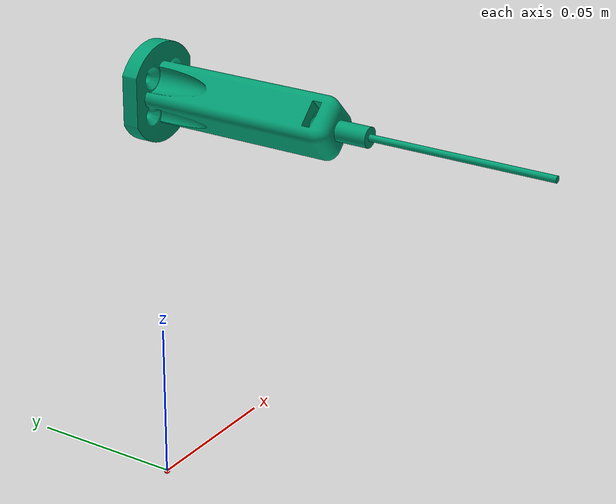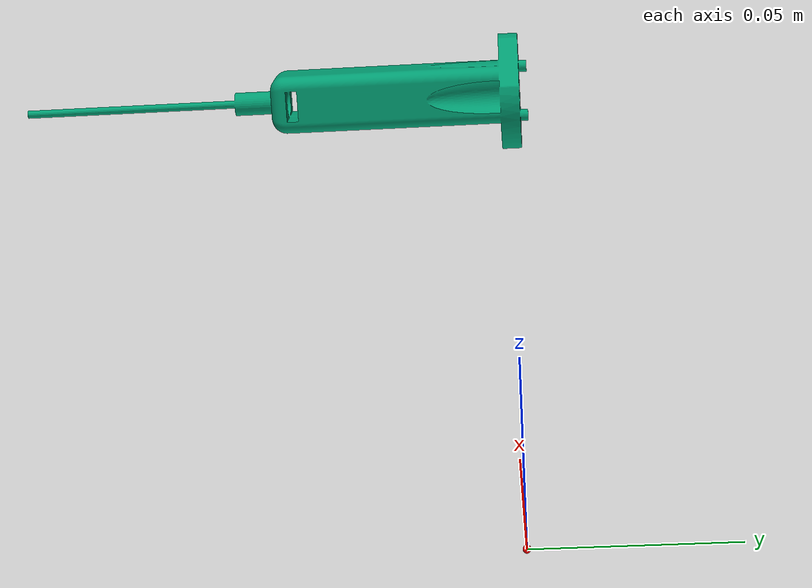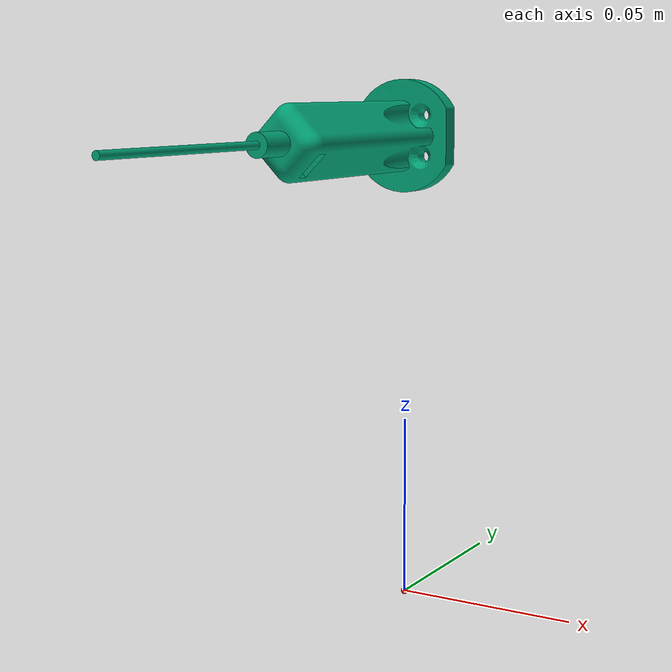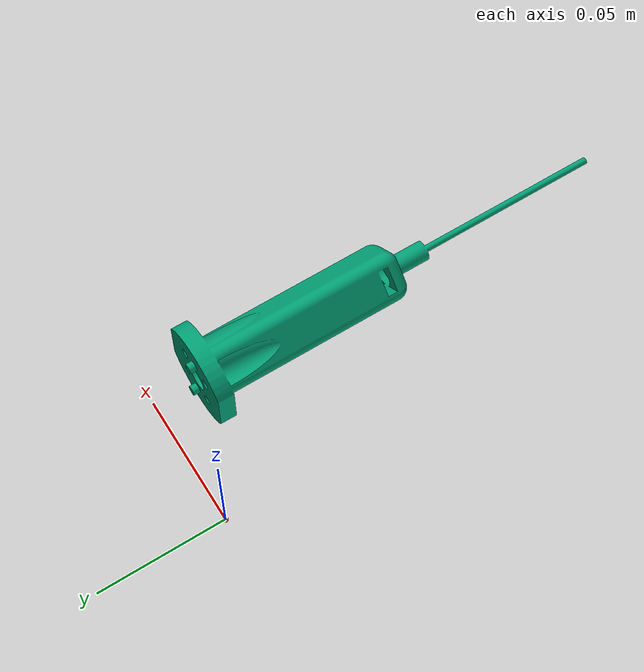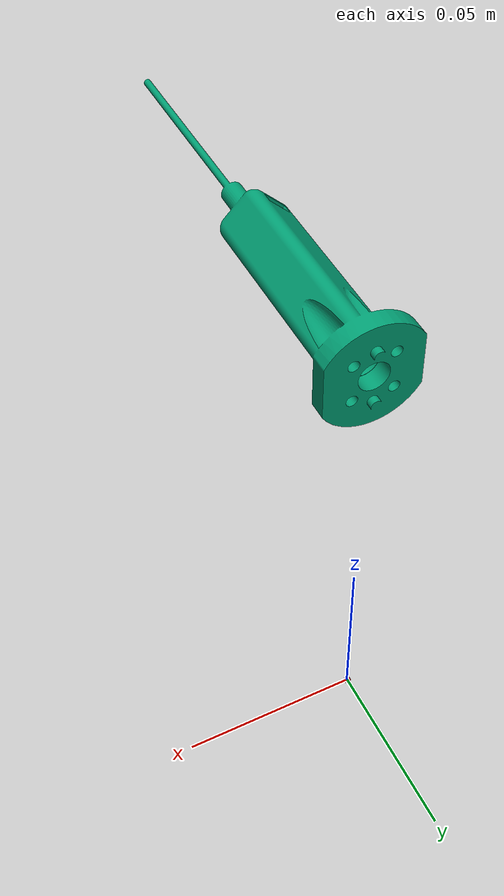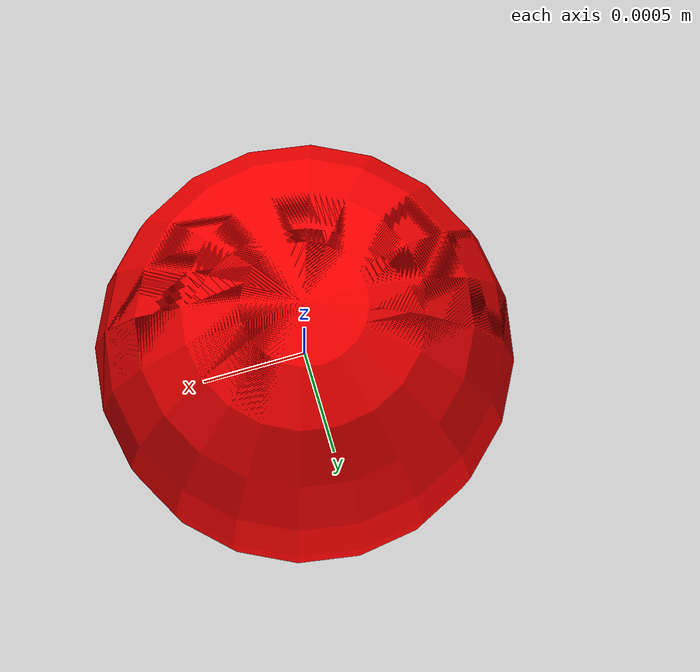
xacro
<?xml version="1.0"?>
<robot name="meca500_tool_needle" xmlns:xacro="http://www.ros.org/wiki/xacro">

    <link name="dummy_needle_base">
    </link>

    <link name="dummy_needle_ball_link">
        <collision>
            <origin xyz="0 0 0" rpy="0 0 0"/>
            <geometry>
            <sphere radius="0.002"/>
            </geometry>
        </collision>
        <visual>
            <origin xyz="0 0 0" rpy="0 0 0"/>
            <geometry>
                <sphere radius="0.001"/>
            </geometry>
            <material name="red">
            <color rgba="1.0 0.0 0.0 1.0"/>
            </material>
        </visual>
    </link>

    <link name="dummy_needle_cylinder_link">
        <collision>
            <origin xyz="0 0 0" rpy="0 ${pi / 2} ${-pi / 2}"/>
            <geometry>
            <mesh filename="package://mecademic_description/meshes/dummy_needle_tool.stl" />
            </geometry>
        </collision>
        <visual>
            <origin xyz="0 0 0" rpy="0 ${pi / 2} ${-pi / 2}"/>
            <geometry>
            <mesh filename="package://mecademic_description/meshes/dummy_needle_tool.dae" />
            </geometry>
        </visual>
    </link>

<joint name="dummy_needle_yaw_joint" type="revolute">
        <parent link="dummy_needle_base"/>
        <child link="dummy_needle_yaw_link"/>
        <axis xyz="1 0 0 "/>
        <origin xyz ="0 0 0" rpy="0 0 0"/>
        <limit lower="-${pi / 2}" upper="${pi / 2}" effort="1000" velocity="50.0"/>
    </joint>

    <link name="dummy_needle_yaw_link">
    </link>

    <joint name="dummy_needle_pitch_joint" type="revolute">
        <parent link="dummy_needle_yaw_link"/>
        <child link="dummy_needle_pitch_link"/>
        <axis xyz="0 1 0"/>
        <limit lower="-${pi / 2}" upper="${pi / 2}" effort="1000" velocity="50.0"/>
    </joint>

    <link name="dummy_needle_pitch_link">
    </link>

    <joint name="dummy_needle_roll_joint" type="revolute">
        <parent link="dummy_needle_pitch_link"/>
        <child link="dummy_needle_roll_link"/>
        <axis xyz="0 0 1"/>
        <limit lower="-${pi / 2}" upper="${pi / 2}" effort="1000" velocity="50.0"/>
    </joint>

    <link name="dummy_needle_roll_link">
    </link>

    <joint name="dummy_needle_ball_joint" type="fixed">
        <parent link="dummy_needle_roll_link"/>
        <child link="dummy_needle_ball_link"/>
        <origin xyz="0 0 0" rpy="0 0 0"/>
    </joint>

    <joint name="dummy_needle_insert_joint" type="prismatic">
        <parent link="dummy_needle_ball_link"/>
        <child link="dummy_needle_cylinder_link"/>
        <origin xyz="0 0 .1284" rpy="0 ${pi / 2} ${pi / 2}"/>
        <limit lower="0.0" upper="0.1284" effort="1000" velocity="50.0"/>
    </joint>

    <link name="dummy_needle_tip_link">
        <collision>
            <origin xyz="0 0 0" rpy="0 0 0"/>
            <geometry>
                <sphere radius=".001"/>
            </geometry>
        </collision>
        <visual>
            <origin xyz="0 0 0" rpy="0 0 0"/>
            <geometry>
                <sphere radius=".001"/>
            </geometry>
            <material name="red">
            <color rgba="1.0 0.0 0.0 1.0"/>
            </material>
        </visual>
    </link>

    <joint name="dummy_needle_tip_joint" type="fixed">
        <parent link="dummy_needle_cylinder_link"/>
        <child link="dummy_needle_tip_link"/>
        <origin xyz="0.1284 0 0" rpy="${pi / 2} 0 ${-pi / 2}"/>
    </joint>
</robot>
